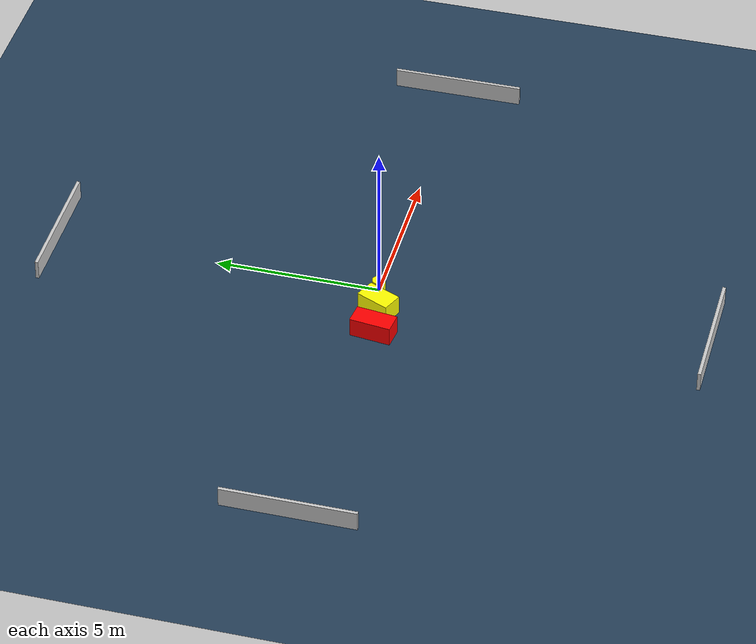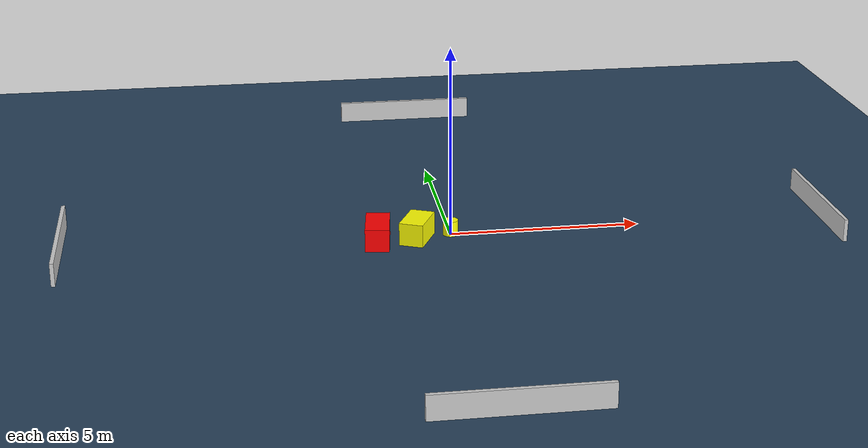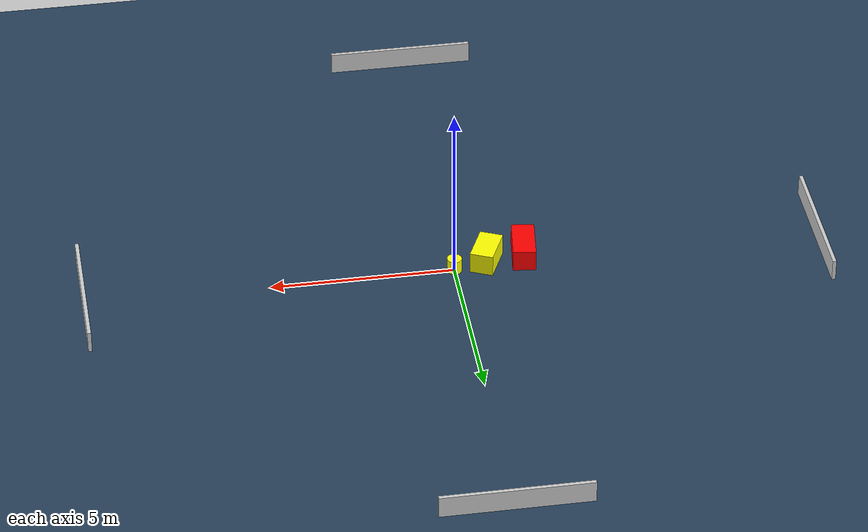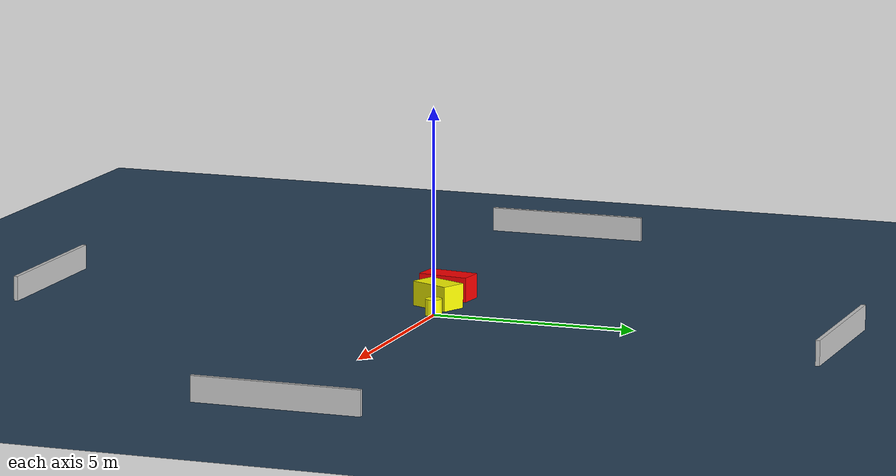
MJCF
<?xml version="1.0" ?>
<mujoco model="generated_environment">
  <option timestep="0.01" integrator="RK4" cone="elliptic"/>
  <default>
    <geom density="1"/>
  </default>
  <asset>
    <texture builtin="gradient" height="3072" name="skybox" rgb1="0.3 0.5 0.7" rgb2="0 0 0" type="skybox" width="512"/>
    <texture builtin="checker" height="300" name="groundplane" rgb1="0.2 0.3 0.4" rgb2="0.1 0.2 0.3" type="2d" width="300"/>
    <material name="groundplane" reflectance="0.2" texrepeat="5 5" texture="groundplane"/>
  </asset>
  <worldbody>
    <light dir="0 0 -1" directional="true" pos="0 0 1.5"/>
    <geom condim="3" friction="0.5 0.005 0.001" material="groundplane" name="floor" pos="0 0 0" size="0 0 0.05" type="plane"/>
    <body name="walls">
      <geom name="wall_1" condim="4" pos="-10.0 0.0 0.3" rgba="0.800000011920929 0.800000011920929 0.800000011920929 1.0" size="0.05 2.0 0.3" type="box"/>
      <geom name="wall_2" condim="4" pos="10.0 0.0 0.3" rgba="0.800000011920929 0.800000011920929 0.800000011920929 1.0" size="0.05 2.0 0.3" type="box"/>
      <geom name="wall_3" condim="4" pos="0.0 -10.0 0.3" rgba="0.800000011920929 0.800000011920929 0.800000011920929 1.0" size="2.0 0.05 0.3" type="box"/>
      <geom name="wall_4" condim="4" pos="0.0 10.0 0.3" rgba="0.800000011920929 0.800000011920929 0.800000011920929 1.0" size="2.0 0.05 0.3" type="box"/>
    </body>
    <body name="robot">
      <joint name="joint_x" type="slide" pos="0 0 0" axis="1 0 0"/>
      <joint name="joint_y" type="slide" pos="0 0 0" axis="0 1 0"/>
      <geom name="robot" type="cylinder" pos="0.0 0.0 0.2" size="0.2 0.2 0.0" mass="5.0" friction="1.0 0.005 0.0001" condim="4" rgba="1.0 1.0 0.0 1.0"/>
    </body>
    <body name="obstacle_1_movable">
      <geom name="obstacle_1_movable" condim="4" pos="-0.9087248484022641 -0.2199369138832659 0.3" euler="0 0 155.62767224754984" friction="0.0 0.005 0.001" rgba="1.0 1.0 0.0 1.0" size="0.31733899711597824 0.5288050309012189 0.3" type="box" mass="0.1"/>
      <joint type="free"/>
    </body>
    <body name="obstacle_2_static">
      <geom name="obstacle_2_static" condim="4" pos="-1.942625378894812 -0.33693890997934217 0.3" euler="0 0 352.8283787014886" friction="0.0 0.005 0.001" rgba="1.0 0.0 0.0 1.0" size="0.3113435225683381 0.6277610585798812 0.3" type="box"/>
    </body>
  </worldbody>
  <actuator>
    <motor name="actuator_x" joint="joint_x" gear="1" ctrlrange="-1 1"/>
    <motor name="actuator_y" joint="joint_y" gear="1" ctrlrange="-1 1"/>
  </actuator>
</mujoco>
